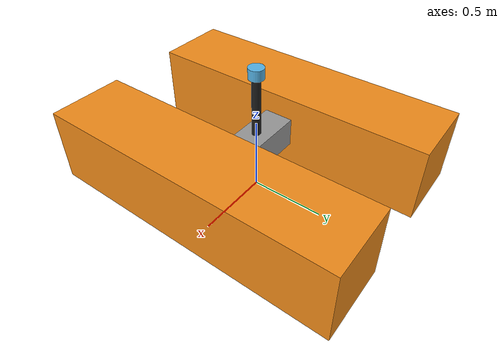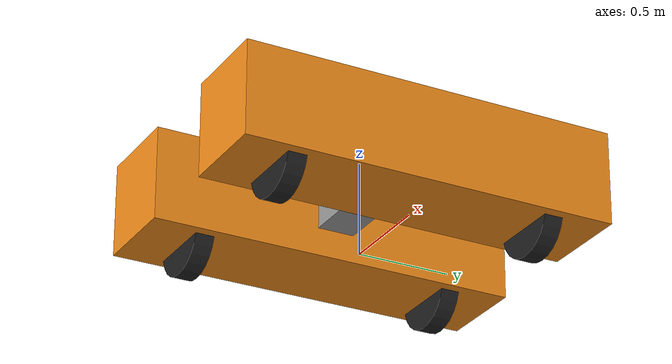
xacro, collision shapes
<?xml version="1.0"?>
<robot name="railload_robot" xmlns:xacro="http://ros.org/wiki/xacro">
    <!-- xacro argument -->
    <xacro:arg name="use_nominal_extrinsics" default="true"/>

    <!-- xacro include -->
    <xacro:include filename="$(find railload_robot_description)/urdf/common_inertia.urdf.xacro" />
    <xacro:include filename="$(find railload_robot_description)/urdf/railload_robot_properties.urdf.xacro" />
    <xacro:include filename="$(find railload_robot_description)/urdf/robot/base.urdf.xacro" />
    <xacro:include filename="$(find railload_robot_description)/urdf/robot/wheel.urdf.xacro" />
    <xacro:include filename="$(find railload_robot_description)/urdf/robot/differential_drive.gazebo.xacro" />
    <xacro:include filename="$(find railload_robot_description)/urdf/robot/color.gazebo.xacro"/>
    <xacro:include filename="$(find velodyne_description)/urdf/VLP-16.urdf.xacro"/>

    <!-- Robot Base -->
    <xacro:base mass="${base_mass}"/>

    <!-- Robot Wheels -->
    <xacro:wheel mass="${wheel_mass}"/>

    <!-- Differential Drive Controller (Plugin) -->
    <xacro:differential_drive_controller/>

    <!-- Gazebo Color -->
    <xacro:gazebo_color/>

    <!-- Lidars (Plugin) -->
    <xacro:VLP-16 parent="base_link" name="velodyne" topic="/velodyne_points" hz="10" samples="440" gpu="true">
        <xacro:insert_block name="lidar_pose" />
    </xacro:VLP-16>

    <!-- IntelRealsense D435 (Plugin) -->

</robot>

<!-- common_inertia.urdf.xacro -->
<robot xmlns:xacro="http://ros.org/wiki/xacro">

    <!-- see https://secure.wikimedia.org/wikipedia/en/wiki/List_of_moment_of_inertia_tensors -->

    <!-- #################### versions without origin #################### -->
    <xacro:macro name="sphere_inertial" params="radius mass">
        <inertial>
            <mass value="${mass}" />
            <origin xyz="0 0 0" />
            <inertia ixx="${0.4 * mass * radius * radius}" ixy="0.0" ixz="0.0"
                     iyy="${0.4 * mass * radius * radius}" iyz="0.0"
                     izz="${0.4 * mass * radius * radius}" />
        </inertial>
    </xacro:macro>

    <xacro:macro name="cylinder_inertial" params="radius length mass">
        <inertial>
            <mass value="${mass}" />
            <origin xyz="0 0 0" />
            <inertia ixx="${0.0833333 * mass * (3 * radius * radius + length * length)}" ixy="0.0" ixz="0.0"
                     iyy="${0.0833333 * mass * (3 * radius * radius + length * length)}" iyz="0.0"
                     izz="${0.5 * mass * radius * radius}" />
        </inertial>
    </xacro:macro>

    <xacro:macro name="box_inertial" params="x y z mass">
        <inertial>
            <mass value="${mass}" />
            <origin xyz="0 0 0" />
            <inertia ixx="${0.0833333 * mass * (y*y + z*z)}" ixy="0.0" ixz="0.0"
                     iyy="${0.0833333 * mass * (x*x + z*z)}" iyz="0.0"
                     izz="${0.0833333 * mass * (x*x + y*y)}" />
        </inertial>
    </xacro:macro>

    <!-- #################### versions with origin #################### -->
    <xacro:macro name="sphere_inertial_with_origin" params="radius mass *origin">
        <inertial>
            <mass value="${mass}" />
            <xacro:insert_block name="origin" />
            <inertia ixx="${0.4 * mass * radius * radius}" ixy="0.0" ixz="0.0"
                     iyy="${0.4 * mass * radius * radius}" iyz="0.0"
                     izz="${0.4 * mass * radius * radius}" />
        </inertial>
    </xacro:macro>

    <xacro:macro name="cylinder_inertial_with_origin" params="radius length mass *origin">
        <inertial>
            <mass value="${mass}" />
            <xacro:insert_block name="origin" />
            <inertia ixx="${0.0833333 * mass * (3 * radius * radius + length * length)}" ixy="0.0" ixz="0.0"
                     iyy="${0.0833333 * mass * (3 * radius * radius + length * length)}" iyz="0.0"
                     izz="${0.5 * mass * radius * radius}" />
        </inertial>
    </xacro:macro>

    <xacro:macro name="box_inertial_with_origin" params="x y z mass *origin">
        <inertial>
            <mass value="${mass}" />
            <xacro:insert_block name="origin" />
            <inertia ixx="${0.0833333 * mass * (y*y + z*z)}" ixy="0.0" ixz="0.0"
                     iyy="${0.0833333 * mass * (x*x + z*z)}" iyz="0.0"
                     izz="${0.0833333 * mass * (x*x + y*y)}" />
        </inertial>
    </xacro:macro>

</robot>

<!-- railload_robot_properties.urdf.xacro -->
<robot xmlns:xacro="http://ros.org/wiki/xacro">
    <!-- base property -->
    <xacro:property name="base_mass" value="50.0" />

    <!-- wheel property -->
    <xacro:property name="wheel_mass" value="31.709" />

    <!-- lidar property -->
    <xacro:property name="lidar_pose">
        <origin xyz="0 0 0.5" rpy="0 0 0" />
    </xacro:property>

    <!-- camera property -->
    <xacro:arg name="use_nominal_extrinsics" default="true"/>
    <xacro:property name="camera_pose">
        <origin xyz="0.765 -0.031 0.135" rpy="0 0 0" />
    </xacro:property>

</robot>

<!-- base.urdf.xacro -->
<robot xmlns:xacro="http://ros.org/wiki/xacro">
    <xacro:macro name="base" params="mass">
    <xacro:property name="PI" value="3.1415926535897931" />
        <link name="base_footprint"/>

        <link name="base_link" >
            <visual>
                <origin xyz="0 0 0" rpy="0 0 0" />
                <geometry>
                    <box size="0.5 0.2 0.2"/>
                </geometry>
            </visual>
            <collision>
                <origin xyz="0 0 0" rpy="0 0 0" />
                <geometry>
                    <box size="0.5 0.2 0.2"/>
                </geometry>
            </collision>
            <xacro:box_inertial x="0.5" y="2.0" z="0.5" mass="5.0" />
        </link>

        <link name="lidar_pole">
            <visual>
                <origin xyz="0 0 0" rpy="0 0 0" />
                <geometry>
                    <cylinder radius="0.03" length="0.5"/>
                </geometry>
            </visual>
            <collision>
                <origin xyz="0 0 0" rpy="0 0 0" />
                <geometry>
                    <cylinder radius="0.03" length="0.5"/>
                </geometry>
            </collision>
            <xacro:cylinder_inertial radius="0.03" length="0.5" mass="1.0" />
        </link>

        <!-- Front Body -->
        <link name="front_body" >
            <visual>
                <origin xyz="0 0 0" rpy="0 0 0" />
                <geometry>
                    <box size="0.5 2.0 0.5"/>
                </geometry>
            </visual>
            <collision>
                <origin xyz="0 0 0" rpy="0 0 0" />
                <geometry>
                    <box size="0.5 2.0 0.5"/>
                </geometry>
            </collision>
            <xacro:box_inertial x="0.5" y="2.0" z="0.5" mass="${mass}" />
        </link>

        <!-- Rear Body -->
        <link name="rear_body" >
            <visual>
                <origin xyz="0 0 0" rpy="0 0 0" />
                <geometry>
                    <box size="0.5 2.0 0.5"/>
                </geometry>
            </visual>
            <collision>
                <origin xyz="0 0 0" rpy="0 0 0" />
                <geometry>
                    <box size="0.5 2.0 0.5"/>
                </geometry>
            </collision>
            <xacro:box_inertial x="0.5" y="2.0" z="0.5" mass="${mass}" />
        </link>

        <!-- Joint - base_link ~ front_body -->
        <joint name="base_link_to_front_body" type="fixed">
            <parent link="base_link"/>
            <child link="front_body"/>
            <origin xyz="0.5 0 0" rpy="0 0 0"/>
        </joint>

        <!-- Joint - base_link ~ rear_body -->
        <joint name="base_link_to_rear_boby" type="fixed">
            <parent link="base_link"/>
            <child link="rear_body"/>
            <origin xyz="-0.5 0 0.0" rpy="0 0 0"/>
        </joint>

        <!-- Joint - base_link ~ base_footprint -->
        <joint name="base_link_to_footprint" type="fixed">
            <parent link="base_footprint"/>
            <child link="base_link"/>
            <origin xyz="0 0 0.3285" rpy="0 0 0"/>
        </joint>

        <!-- Joint - base_link ~ lidar_pole -->
        <joint name="base_link_to_lidar_pole" type="fixed">
            <parent link="base_link"/>
            <child link="lidar_pole"/>
            <origin xyz="0 0 0.3" rpy="0 0 0"/>
        </joint>

    </xacro:macro>
</robot>

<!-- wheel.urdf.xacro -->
<robot xmlns:xacro="http://ros.org/wiki/xacro">

    <!-- Constants -->
    <xacro:property name="PI" value="3.1415926535897931" />
    <xacro:property name="wheel_length" value="0.1" />
    <xacro:property name="wheel_radius" value="0.2" />
    <xacro:property name="wheel_mass" value="5" />

    <!-- Set up of the Wheel -->
    <xacro:macro name="wheel" params="mass">
        <!-- Wheel1 Link -->
        <link name="wheel1">
            <visual>
                <geometry>
                    <cylinder radius="${wheel_radius}" length="${wheel_length}"/>
                </geometry>
            </visual>

            <collision>
                <origin xyz="0 0 0" rpy="0 0 0" />
                <geometry>
                    <cylinder radius="${wheel_radius}" length="${wheel_length}"/>
                </geometry>
            </collision>

            <xacro:cylinder_inertial radius="${wheel_radius}" length="${wheel_length}" mass="${wheel_mass}" />
        </link>

        <gazebo reference="wheel1">
            <mu1>0.01</mu1>
            <mu2>0.01</mu2>
        </gazebo>

        <!-- Joint - front_body ~ wheel1 -->
        <joint name="wheel1_joint" type="fixed">
            <axis xyz="0 0 1" />
            <parent link="front_body"/>
            <child link="wheel1"/>
            <origin xyz="0.0 0.7 -0.2" rpy="${PI/2} 0 -${PI}" />
        </joint>

        <!-- Wheel2 Link -->
        <link name="wheel2">
            <visual>
                <geometry>
                    <cylinder radius="${wheel_radius}" length="${wheel_length}"/>
                </geometry>
            </visual>

            <collision>
                <origin xyz="0 0 0" rpy="0 0 0" />
                <geometry>
                    <cylinder radius="${wheel_radius}" length="${wheel_length}"/>
                </geometry>
            </collision>

            <xacro:cylinder_inertial radius="${wheel_radius}" length="${wheel_length}" mass="${wheel_mass}" />
        </link>

        <gazebo reference="wheel2">
            <mu1>0.01</mu1>
            <mu2>0.01</mu2>
        </gazebo>

        <!-- Joint - front_body ~ wheel2 -->
        <joint name="wheel2_joint" type="fixed">
            <axis xyz="0 0 1" />
            <parent link="front_body"/>
            <child link="wheel2"/>
            <origin xyz="0.0 -0.7 -0.2" rpy="${PI/2} 0 -${PI}" />
        </joint>

        <link name="wheel3">
            <visual>
                <geometry>
                    <cylinder radius="${wheel_radius}" length="${wheel_length}"/>
                </geometry>
            </visual>

            <collision>
                <origin xyz="0 0 0" rpy="0 0 0" />
                <geometry>
                    <cylinder radius="${wheel_radius}" length="${wheel_length}"/>
                </geometry>
            </collision>

            <xacro:cylinder_inertial radius="${wheel_radius}" length="${wheel_length}" mass="${wheel_mass}" />
        </link>

        <gazebo reference="wheel3">
            <mu1>0.01</mu1>
            <mu2>0.01</mu2>
        </gazebo>

        <!-- Joint - rear_body ~ wheel3 -->
        <joint name="wheel3_joint" type="fixed">
            <axis xyz="0 0 1" />
            <parent link="rear_body"/>
            <child link="wheel3"/>
            <origin xyz="0.0 0.7 -0.2" rpy="${PI/2} 0 -${PI}" />
        </joint>

        <!-- Wheel4 Link -->
        <link name="wheel4">
            <visual>
                <geometry>
                    <cylinder radius="${wheel_radius}" length="${wheel_length}"/>
                </geometry>
            </visual>

            <collision>
                <origin xyz="0 0 0" rpy="0 0 0" />
                <geometry>
                    <cylinder radius="${wheel_radius}" length="${wheel_length}"/>
                </geometry>
            </collision>

            <xacro:cylinder_inertial radius="${wheel_radius}" length="${wheel_length}" mass="${wheel_mass}" />
        </link>

        <gazebo reference="wheel4">
            <mu1>0.01</mu1>
            <mu2>0.01</mu2>
        </gazebo>

        <!-- Joint - rear_body ~ wheel1 -->
        <joint name="wheel4_joint" type="fixed">
            <axis xyz="0 0 1" />
            <parent link="rear_body"/>
            <child link="wheel4"/>
            <origin xyz="0.0 -0.7 -0.2" rpy="${PI/2} 0 -${PI}" />
        </joint>

    </xacro:macro>
</robot>

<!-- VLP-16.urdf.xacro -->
<robot xmlns:xacro="http://www.ros.org/wiki/xacro" name="VLP-16">
  <xacro:property name="M_PI" value="3.1415926535897931"/>
  <xacro:macro name="VLP-16" params="*origin parent:=base_link name:=velodyne topic:=/velodyne_points hz:=10 lasers:=16 samples:=1875 collision_range:=0.3 min_range:=0.9 max_range:=130.0 noise:=0.008 min_angle:=-${M_PI} max_angle:=${M_PI} gpu:=false">

    <joint name="${name}_base_mount_joint" type="fixed">
      <xacro:insert_block name="origin"/>
      <parent link="${parent}"/>
      <child link="${name}_base_link"/>
    </joint>

    <link name="${name}_base_link">
      <inertial>
        <mass value="0.83"/>
        <origin xyz="0 0 0.03585"/>
        <inertia ixx="${(0.83 * (3.0*0.0516*0.0516 + 0.0717*0.0717)) / 12.0}" ixy="0" ixz="0" iyy="${(0.83 * (3.0*0.0516*0.0516 + 0.0717*0.0717)) / 12.0}" iyz="0" izz="${0.5 * 0.83 * (0.0516*0.0516)}"/>
      </inertial>
      <visual>
        <geometry>
          <mesh filename="package://velodyne_description/meshes/VLP16_base_1.dae"/>
        </geometry>
      </visual>
      <visual>
        <geometry>
          <mesh filename="package://velodyne_description/meshes/VLP16_base_2.dae"/>
        </geometry>
      </visual>
      <collision>
        <origin rpy="0 0 0" xyz="0 0 0.03585"/>
        <geometry>
          <cylinder radius="0.0516" length="0.0717"/>
        </geometry>
      </collision>
    </link>

    <joint name="${name}_base_scan_joint" type="fixed">
      <origin xyz="0 0 0.0377" rpy="0 0 0"/>
      <parent link="${name}_base_link"/>
      <child link="${name}"/>
    </joint>

    <link name="${name}">
      <inertial>
        <mass value="0.01"/>
        <origin xyz="0 0 0"/>
        <inertia ixx="1e-7" ixy="0" ixz="0" iyy="1e-7" iyz="0" izz="1e-7"/>
      </inertial>
      <visual>
        <origin xyz="0 0 -0.0377"/>
        <geometry>
          <mesh filename="package://velodyne_description/meshes/VLP16_scan.dae"/>
        </geometry>
      </visual>
    </link>

    <!-- Gazebo requires the velodyne_gazebo_plugins package -->
    <gazebo reference="${name}">
      <xacro:if value="${gpu}">
        <sensor type="gpu_ray" name="${name}-VLP16">
          <pose>0 0 0 0 0 0</pose>
          <visualize>false</visualize>
          <update_rate>${hz}</update_rate>
          <ray>
            <scan>
              <horizontal>
                <samples>${samples}</samples>
                <resolution>1</resolution>
                <min_angle>${min_angle}</min_angle>
                <max_angle>${max_angle}</max_angle>
              </horizontal>
              <vertical>
                <samples>${lasers}</samples>
                <resolution>1</resolution>
                <min_angle>-${15.0*M_PI/180.0}</min_angle>
                <max_angle>
                  ${15.0*M_PI/180.0}</max_angle>
              </vertical>
            </scan>
            <range>
              <min>${collision_range}</min>
              <max>${max_range+1}</max>
              <resolution>0.001</resolution>
            </range>
            <noise>
              <type>gaussian</type>
              <mean>0.0</mean>
              <stddev>0.0</stddev>
            </noise>
          </ray>
          <plugin name="gazebo_ros_laser_controller" filename="libgazebo_ros_velodyne_laser.so">
            <topicName>${topic}</topicName>
            <frameName>${name}</frameName>
            <min_range>${min_range}</min_range>
            <max_range>${max_range}</max_range>
            <gaussianNoise>${noise}</gaussianNoise>
          </plugin>
        </sensor>
      </xacro:if>
      <xacro:unless value="${gpu}">
        <sensor type="ray" name="${name}-VLP16">
          <pose>0 0 0 0 0 0</pose>
          <visualize>false</visualize>
          <update_rate>${hz}</update_rate>
          <ray>
            <scan>
              <horizontal>
                <samples>${samples}</samples>
                <resolution>1</resolution>
                <min_angle>${min_angle}</min_angle>
                <max_angle>${max_angle}</max_angle>
              </horizontal>
              <vertical>
                <samples>${lasers}</samples>
                <resolution>1</resolution>
                <min_angle>-${15.0*M_PI/180.0}</min_angle>
                <max_angle>
                  ${15.0*M_PI/180.0}</max_angle>
              </vertical>
            </scan>
            <range>
              <min>${collision_range}</min>
              <max>${max_range+1}</max>
              <resolution>0.001</resolution>
            </range>
            <noise>
              <type>gaussian</type>
              <mean>0.0</mean>
              <stddev>0.0</stddev>
            </noise>
          </ray>
          <plugin name="gazebo_ros_laser_controller" filename="libgazebo_ros_velodyne_laser.so">
            <topicName>${topic}</topicName>
            <frameName>${name}</frameName>
            <min_range>${min_range}</min_range>
            <max_range>${max_range}</max_range>
            <gaussianNoise>${noise}</gaussianNoise>
          </plugin>
        </sensor>
      </xacro:unless>
    </gazebo>

  </xacro:macro>
</robot>
